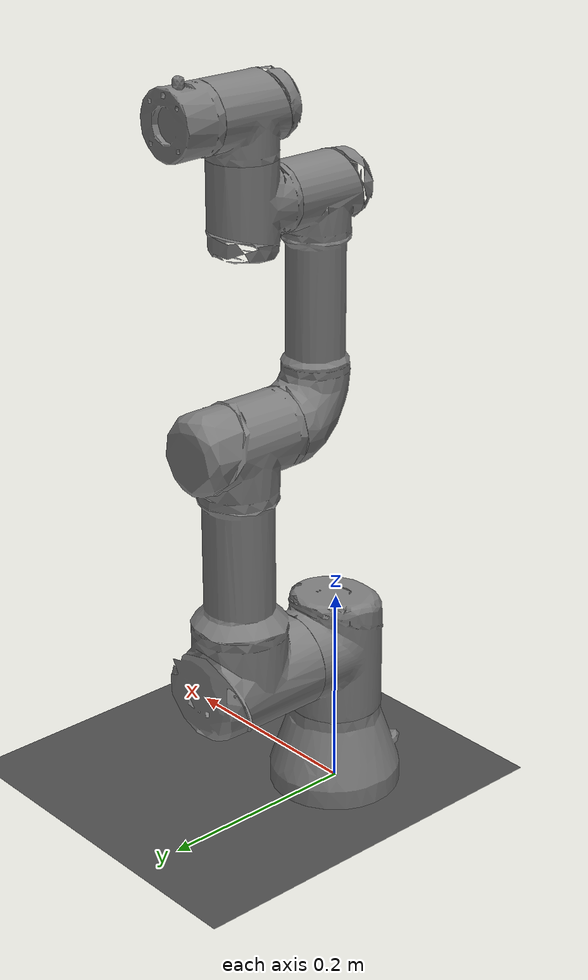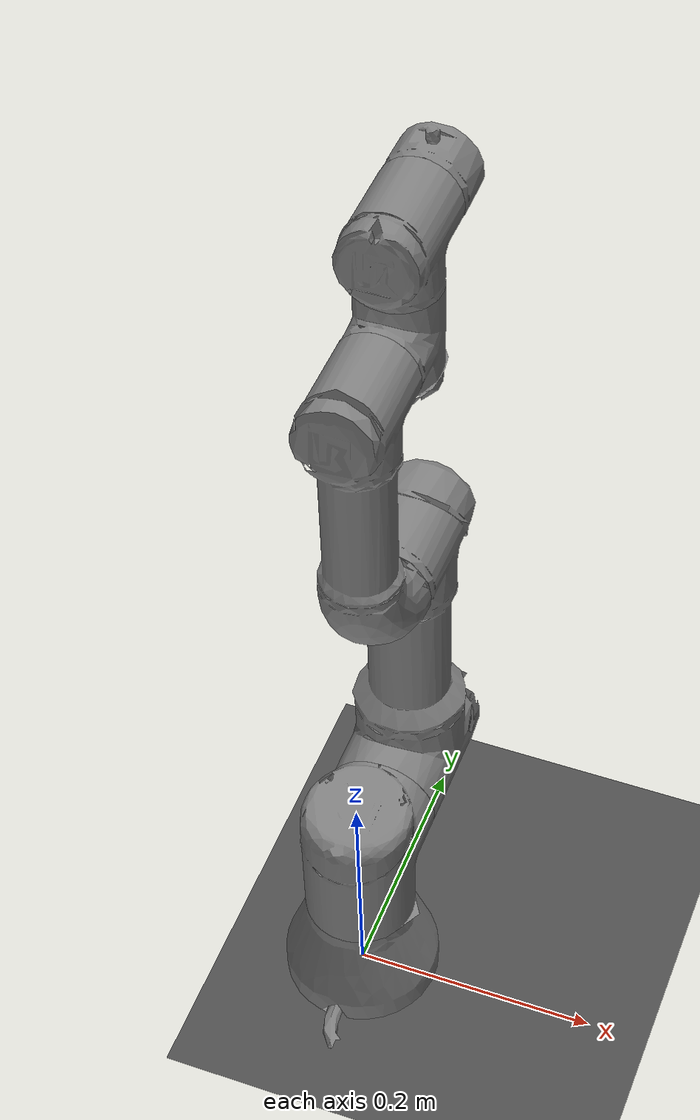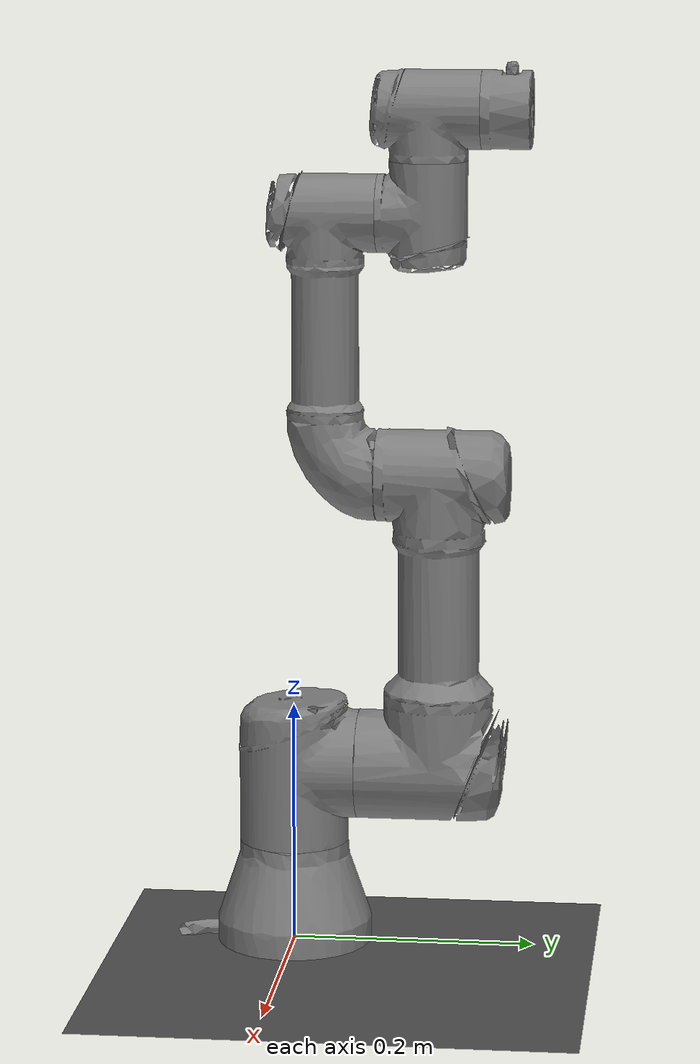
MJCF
<mujoco model="ur3 scene">
  <include file="ur3.xml"/>

  <statistic center="0.3 0 0.4" extent="0.8"/>

  <visual>
    <headlight diffuse="1 1 1" ambient="0.3 0.3 0.3" specular="0.2 0.2 0.2"/>
    <rgba haze="0.05 0.1 0.15 1"/>
    <global azimuth="135" elevation="-15"/>
  </visual>

  <asset>
    <texture type="skybox" builtin="gradient" rgb1="0.6 0.8 1.0" rgb2="0.1 0.2 0.3" width="512" height="3072"/>
    <texture type="2d" name="groundplane" builtin="checker" mark="edge" rgb1="0.4 0.4 0.4" rgb2="0.2 0.2 0.2"
      markrgb="0.9 0.9 0.9" width="300" height="300"/>
    <material name="groundplane" texture="groundplane" texuniform="true" texrepeat="5 5" reflectance="0.3"/>
  </asset>

  <worldbody>
    <light pos="0 0 3" dir="0 0 -1" diffuse="1 1 1" specular="0.3 0.3 0.3"/>
    <light pos="2 2 3" dir="-1 -1 -1" diffuse="0.8 0.8 0.8" specular="0.2 0.2 0.2"/>
    <light pos="-2 -2 3" dir="1 1 -1" diffuse="0.8 0.8 0.8" specular="0.2 0.2 0.2"/>
    <geom name="floor" size="0 0 0.05" type="plane" material="groundplane"/>
  </worldbody>
</mujoco>

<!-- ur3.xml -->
<mujoco model="ur3">
  <compiler angle="radian" meshdir="assets"/>

  <option integrator="implicitfast"/>

  <default>
    <default class="ur3">
      <material specular="0.5" shininess="0.25"/>
      <joint axis="0 1 0" range="-3.14159 3.14159" armature="0.1"/>
      <general gaintype="fixed" biastype="affine" ctrlrange="-3.1415 3.1415" gainprm="2000" biasprm="0 -2000 -400" forcerange="-100 100"/>
      <default class="size3">
        <default class="size3_limited">
          <joint range="-1.5708 1.5708"/>
          <general ctrlrange="-1.5708 1.5708"/>
        </default>
      </default>
      <default class="size1">
        <general gainprm="500" biasprm="0 -500 -100" forcerange="-20 20"/>
      </default>
      <default class="visual">
        <geom type="mesh" contype="0" conaffinity="0" group="2"/>
      </default>
      <default class="collision">
        <geom type="capsule" group="3"/>
        <default class="eef_collision">
          <geom type="cylinder"/>
        </default>
      </default>
      <site size="0.001" rgba="0.5 0.5 0.5 0.3" group="4"/>
    </default>
  </default>

  <asset>
    <mesh name="ur3_base" file="ur3_base.obj"/>
    <mesh name="ur3_shoulder" file="ur3_shoulder.obj"/>
    <mesh name="ur3_upperarm" file="ur3_upperarm.obj"/>
    <mesh name="ur3_forearm" file="ur3_forearm.obj"/>
    <mesh name="ur3_wrist1" file="ur3_wrist1.obj"/>
    <mesh name="ur3_wrist2" file="ur3_wrist2.obj"/>
    <mesh name="ur3_wrist3" file="ur3_wrist3.obj"/>
  </asset>

  <worldbody>
    <body name="base" pos="0 0 0" childclass="ur3">
      <inertial mass="2.0" pos="0 0 0" diaginertia="0.005625 0.00305317 0.00305317"/>
      <geom type="mesh" mesh="ur3_base"/>
      <body name="shoulder_link" pos="0 0 0.1519">
        <inertial mass="2.0" pos="0 0 0" diaginertia="0.00809316 0.00809316 0.005625"/>
        <joint name="shoulder_pan_joint" axis="0 0 1" range="-3.14159 3.14159" damping="0.1" limited="true"/>
        <geom type="mesh" mesh="ur3_shoulder"/>
        <body name="upper_arm_link" pos="0 0.1198 0">
          <inertial mass="3.42" pos="0 0 0.121825" diaginertia="0.0217285 0.0217285 0.00961875"/>
          <joint name="shoulder_lift_joint" axis="0 1 0"/>
          <geom type="mesh" mesh="ur3_upperarm"/>
          <body name="forearm_link" pos="0 -0.0925 0.24365">
            <inertial mass="1.26" pos="0 0 0.106625" diaginertia="0.00654681 0.00654681 0.00354375"/>
            <joint name="elbow_joint" axis="0 1 0"/>
            <geom type="mesh" mesh="ur3_forearm"/>
            <body name="wrist_1_link" pos="0 0 0.21325">
              <joint name="wrist_1_joint" axis="0 1 0"/>
              <geom type="mesh" mesh="ur3_wrist1"/>
              <body name="wrist_2_link" pos="0 0.08505 0">
                <joint name="wrist_2_joint" axis="0 0 1"/>
                <geom type="mesh" mesh="ur3_wrist2"/>
                <body name="wrist_3_link" pos="0 0 0.08535">
                  <joint name="wrist_3_joint" axis="0 1 0"/>
                  <geom type="mesh" mesh="ur3_wrist3"/>
                </body>
              </body>
            </body>
          </body>
        </body>
      </body>
    </body>
  </worldbody>

  <actuator>
    <general class="size3" name="shoulder_pan" joint="shoulder_pan_joint"/>
    <general class="size3" name="shoulder_lift" joint="shoulder_lift_joint"/>
    <general class="size3_limited" name="elbow" joint="elbow_joint"/>
    <general class="size1" name="wrist_1" joint="wrist_1_joint"/>
    <general class="size1" name="wrist_2" joint="wrist_2_joint"/>
    <general class="size1" name="wrist_3" joint="wrist_3_joint"/>
  </actuator>
</mujoco>
